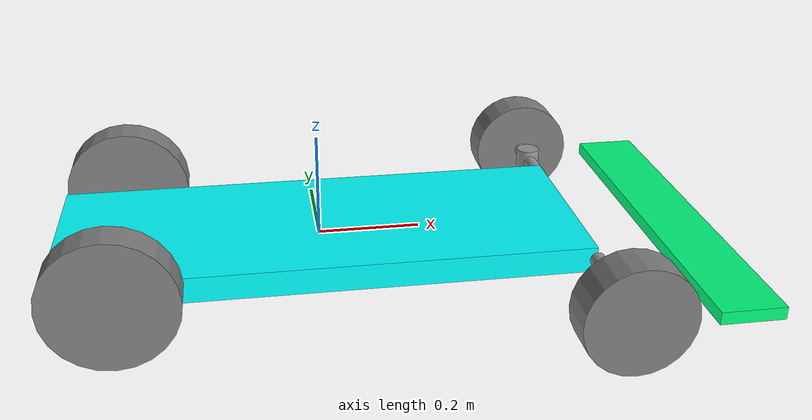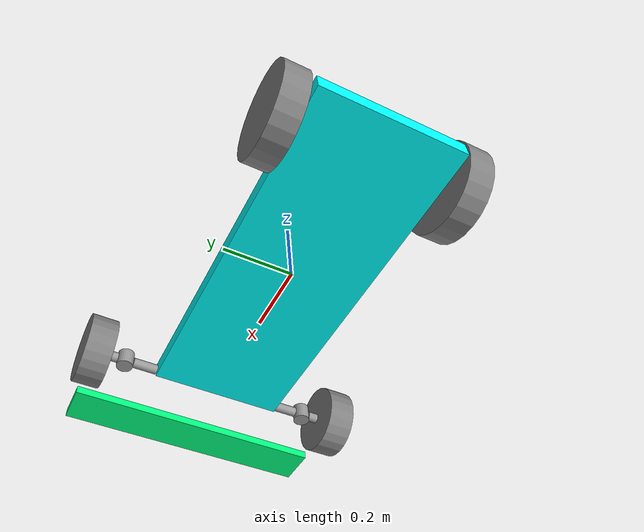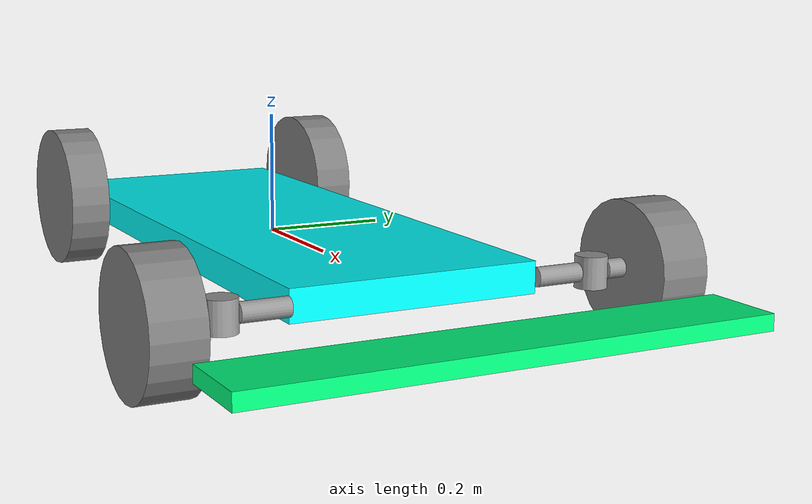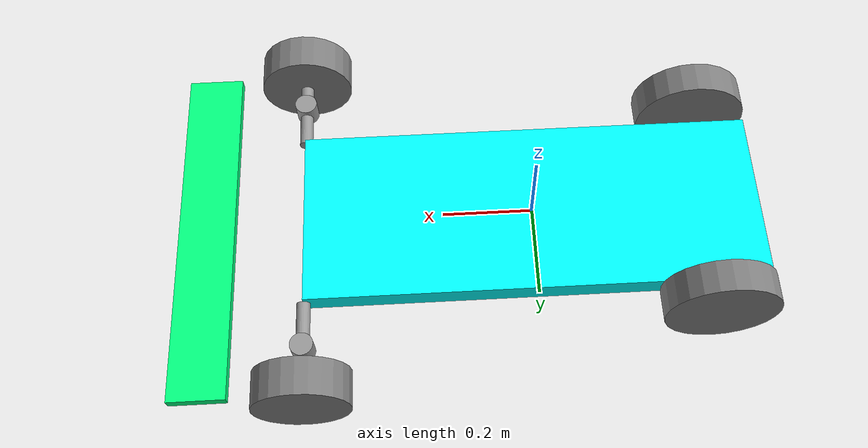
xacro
<?xml version="1.0"?>
<robot xmlns:xacro="http://ros.org/wiki/xacro">

 <!-- Heavily based on https://navigation.ros.org/setup_guides/urdf/setup_urdf.html -->

   <!-- Define robot constants -->
  <xacro:property name="base_width" value="0.4"/>
  <xacro:property name="base_length" value="1.02"/>
  <xacro:property name="base_height" value="0.05"/>

  <!-- backwheel params -->
  <xacro:property name="backwheel_radius" value="0.125"/>
  <xacro:property name="backwheel_width" value="0.069"/>
  <xacro:property name="backwheel_ygap" value="0.01"/>
  <xacro:property name="backwheel_zoff" value="-0.02"/>
  <xacro:property name="backwheel_xoff" value="${-(base_length)/2 + (backwheel_radius)}"/>

  <!-- frontwheel params -->
  <xacro:property name="frontwheel_radius" value="0.105"/>
  <xacro:property name="frontwheel_width" value="0.080"/>
  <xacro:property name="frontwheel_ygapp" value="0.1"/>
  <xacro:property name="frontwheel_zoff" value="0.080"/>
  <xacro:property name="frontwheel_xoff" value="${ (base_length)/2 }"/>

  <!-- Frontwheel steering geometry params -->
  <xacro:property name="steering_body_extension_length" value="0.075"/>
  <xacro:property name="steering_body_extension_radius" value="0.015"/>
  <xacro:property name="steering_body_extension_zoff" value="0"/>
  <xacro:property name="steering_swiwel_length" value="0.05"/>
  <xacro:property name="steering_swiwel_radius" value="0.025"/>
  <xacro:property name="steering_swiwel_extension_length" value="0.03"/>
  <xacro:property name="steering_swiwel_extension_radius" value="0.015"/>

  <xacro:property name="steering_turn_max_limit" value="${pi/5}"/>
  <xacro:property name="steering_turn_min_limit" value="${-pi/5}"/>

  <!-- Gokart front wing parameters - As of now simplified to a slab -->
  <xacro:property name="gokart_frontwing_width" value="0.8"/>
  <xacro:property name="gokart_frontwing_length" value="0.125"/>
  <xacro:property name="gokart_frontwing_height" value="0.025"/>
  <xacro:property name="gokart_frontwing_body_xoff" value="0.16"/>

  <!-- Inertial parameters for chassi dynamics, very simplified -->
  <!-- TODO make the dynamics more accurate and real life accurate, see this as placeholders-->
  <xacro:property name="backwheel_weight" value="4.0"/>
  <xacro:property name="frontwheel_weight" value="1.5"/>
  <xacro:property name="chassi_body_weight" value="50.0"/>
  <xacro:property name="frontwing_weight" value="50.0"/>
  <xacro:property name="front_steering_link_weight" value="0.25"/>

  <!-- Inertial macros -->
  <xacro:include filename="$(find autonomous_platform_robot_description_pkg)/src/description/inertia_macros.xacro"/>

  <!-- Robot Base -->
  <link name="base_link">
    <visual>
      <geometry>
        <box size="${base_length} ${base_width} ${base_height}"/>
      </geometry>
      <material name="Cyan">
        <color rgba="0 1.0 1.0 1.0"/>
      </material>
    </visual>

    <collision>
      <geometry>
        <box size="${base_length} ${base_width} ${base_height}"/>
      </geometry>
    </collision>

    <xacro:inertial_box mass="${chassi_body_weight}" x="${base_length}" y="${base_width}" z="${base_height}">
      <origin xyz="0.0 0.0 0.0" rpy="0.0 0.0 0.0"/>
    </xacro:inertial_box>

    <gazebo reference="base_link">
      <material name="Cyan">
        <color rgba="0 1.0 1.0 1.0"/>
      </material>
    </gazebo>
  </link>

    <!-- Robot Footprint -->
  <link name="base_footprint"/>

  <joint name="base_joint" type="fixed">
    <parent link="base_link"/>
    <child link="base_footprint"/>
    <origin xyz="0.0 0.0 ${-(backwheel_radius+backwheel_zoff)}" rpy="0 0 0"/>
  </joint>

    <!-- macro backwheels -->
  <xacro:macro name="wheel" params="prefix x_reflect y_reflect">
    <link name="backwheel_${prefix}_link">
      <visual>
        <origin xyz="0 0 0" rpy="${pi/2} 0 0"/>
        <geometry>
            <cylinder radius="${backwheel_radius}" length="${backwheel_width}"/>
        </geometry>
        <material name="Gray">
          <color rgba="0.5 0.5 0.5 1.0"/>
        </material>
      </visual>

      <collision>
      <origin xyz="0 0 0" rpy="${pi/2} 0 0"/>
        <geometry>
            <cylinder radius="${backwheel_radius}" length="${backwheel_width}"/>
        </geometry>
      </collision>

      <xacro:inertial_cylinder mass="${backwheel_weight}" length="${backwheel_width}" radius="${backwheel_radius}" >
        <origin xyz="0 0 0" rpy="${pi/2} 0 0"/>
      </xacro:inertial_cylinder>
    </link>

    <joint name="${prefix}_joint" type="continuous">
      <parent link="base_link"/>
      <child link="backwheel_${prefix}_link"/>
      <origin xyz="${x_reflect*backwheel_xoff} ${y_reflect*(base_width/2)+y_reflect*backwheel_ygap + y_reflect*backwheel_width/2} ${-backwheel_zoff}" rpy="0 0 0"/>
      <axis xyz="0 1 0"/>
      <limit effort="0.1" velocity="20"/>
    </joint>

    <gazebo reference="backwheel_${prefix}_link">
      <material> Gazebo/DarkGrey </material>
    </gazebo>

  </xacro:macro>

  <!-- Create back wheels -->
  <xacro:wheel prefix="drive_wheel_left" x_reflect="1" y_reflect="1" />
  <xacro:wheel prefix="drive_wheel_right" x_reflect="1" y_reflect="-1" />

  <!-- macro front steering geometry and front wheels i.e define everything once and mirror left and right geometry-->
  <xacro:macro name="front_steering" params="prefix x_reflect y_reflect">
  <!-- links -->

  <!-- Link describing how steering geomtry is mounted to the gokart chassis-->
    <link name="body_extension_${prefix}_link">
      <visual>
        <origin xyz="0 0 0" rpy="${pi/2} 0 0"/>
        <geometry>
            <cylinder radius="${steering_body_extension_radius}" length="${steering_body_extension_length}"/>
        </geometry>
        <material name="Gray">
          <color rgba="0.6 0.6 0.6 1.0"/>
        </material>
      </visual>

      <collision>
        <origin xyz="0 0 0" rpy="${pi/2} 0 0"/>
        <geometry>
            <cylinder radius="${steering_body_extension_radius}" length="${steering_body_extension_length}"/>
        </geometry>
      </collision>

      <xacro:inertial_cylinder mass="${front_steering_link_weight}" length="${steering_body_extension_length}" radius="${steering_body_extension_radius}" >
        <origin xyz="0 0 0" rpy="${pi/2} 0 0"/>
      </xacro:inertial_cylinder>

      <gazebo reference="body_extension_${prefix}_link">
        <material> Gazebo/Yellow </material>
      </gazebo>

    </link>

    <!-- Link describing the steering swiwel geometry-->
    <link name="steering_swiwel_${prefix}_link">
      <visual>
        <origin xyz="0 0 0" rpy="0 0 0"/>
        <geometry>
            <cylinder radius="${steering_swiwel_radius}" length="${steering_swiwel_length}"/>
        </geometry>
        <material name="Gray">
          <color rgba="0.6 0.6 0.6 1.0"/>
        </material>
      </visual>

      <collision>
        <origin xyz="0 0 0" rpy="0 0 0"/>
        <geometry>
            <cylinder radius="${steering_swiwel_radius}" length="${steering_swiwel_length}"/>
        </geometry>
      </collision>

      <xacro:inertial_cylinder mass="${front_steering_link_weight}" length="${steering_swiwel_radius}" radius="${steering_swiwel_length}" >
        <origin xyz="0 0 0" rpy="0 0 0"/>
      </xacro:inertial_cylinder>

      <gazebo reference="steering_swiwel_${prefix}_link">
        <material> Gazebo/Orange </material>
      </gazebo>
    </link>

    <!-- link describing how the wheel is mounted a fixed distance from the swiwel geometry i.e rotating point-->
    <link name="swiwel_extension_${prefix}_link">
      <visual>
        <origin xyz="0 0 0" rpy="${pi/2} 0 0"/>
        <geometry>
            <cylinder radius="${steering_swiwel_extension_radius}" length="${steering_swiwel_extension_length}"/>
        </geometry>
        <material name="Gray">
          <color rgba="0.6 0.6 0.6 1.0"/>
        </material>
      </visual>

      <collision>
      <origin xyz="0 0 0" rpy="${pi/2} 0 0"/>
        <geometry>
            <cylinder radius="${steering_swiwel_extension_radius}" length="${steering_swiwel_extension_length}"/>
        </geometry>
      </collision>

      <xacro:inertial_cylinder mass="${front_steering_link_weight}" length="${steering_swiwel_extension_length}" radius="${steering_swiwel_extension_radius}" >
        <origin xyz="0 0 0" rpy="${pi/2} 0 0"/>
      </xacro:inertial_cylinder>

      <gazebo reference="swiwel_extension_${prefix}_link">
        <material> Gazebo/ZincYellow </material>
      </gazebo>
    </link>

    <!-- link describing the front wheel -->
    <link name="frontwheel_${prefix}_link">
      <visual>
        <origin xyz="0 0 0" rpy="${pi/2} 0 0"/>
        <geometry>
            <cylinder radius="${frontwheel_radius}" length="${frontwheel_width}"/>
        </geometry>
        <material name="Gray">
          <color rgba="0.5 0.5 0.5 1.0"/>
        </material>
      </visual>

      <collision>
        <origin xyz="0 0 0" rpy="${pi/2} 0 0"/>
        <geometry>
            <cylinder radius="${frontwheel_radius}" length="${frontwheel_width}"/>
        </geometry>
      </collision>

      <xacro:inertial_cylinder mass="${frontwheel_weight}" length="${frontwheel_width}" radius="${frontwheel_radius}" >
        <origin xyz="0 0 0" rpy="${pi/2} 0 0"/>
      </xacro:inertial_cylinder>

      <gazebo reference="frontwheel_${prefix}_link">
        <material> Gazebo/Grey </material>
      </gazebo>
    </link>

   <!-- joints -->

   <!-- joint describing how the steering gemetry is mounted fixed onto the gokart frame -->
    <joint name="$body_extension_${prefix}_joint" type="fixed">
      <parent link="base_link"/>
      <child link="body_extension_${prefix}_link"/>
      <origin xyz="${x_reflect*frontwheel_xoff} ${y_reflect*(base_width/2)+y_reflect*(steering_body_extension_length)/2} ${steering_body_extension_zoff}" rpy="0 0 0"/>
      <axis xyz="0 1 0"/>
    </joint>

    <!-- joint describing how the steering geometry can swiwel i.e turn the wheel -->
    <joint name="steering_swiwel_${prefix}_joint" type="revolute">
      <parent link="body_extension_${prefix}_link"/>
      <child link="steering_swiwel_${prefix}_link"/>
      <axis xyz="0 0 1" />
      <limit effort="1" lower="${x_reflect*steering_turn_min_limit}" upper="${x_reflect*steering_turn_max_limit}" velocity="1" />
      <origin xyz="0 ${y_reflect*( steering_body_extension_length )/2 + y_reflect*steering_swiwel_radius} 0" rpy="0 0 0"/>
    </joint>

    <!-- Joint descring how the swiwel extension link is mounted to the swiwel link, fixed -->
<joint name="swiwel_extension_${prefix}_joint" type="fixed">
      <parent link="steering_swiwel_${prefix}_link" />
      <child link="swiwel_extension_${prefix}_link"/>
      <origin xyz="0 ${y_reflect*(steering_swiwel_extension_length)/2 + y_reflect*steering_swiwel_radius} 0" rpy="0 0 0"/>
      <axis xyz="0 1 0"/>
    </joint>

    <!-- joint describing how the front wheel is connected to the swiwel extension link and -->
<joint name="frontwheel_${prefix}_joint" type="continuous">
      <parent link="swiwel_extension_${prefix}_link" />
      <child link="frontwheel_${prefix}_link"/>
      <origin xyz="0 ${y_reflect*(steering_swiwel_extension_length)/2 + y_reflect*frontwheel_width/2} 0" rpy="0 0 0"/>
      <axis xyz="0 1 0"/>
      <limit effort="0.1" velocity="5"/>
    </joint>

  </xacro:macro>

  <!-- Create front steering geometry and wheels -->
  <xacro:front_steering prefix="right" x_reflect="1" y_reflect="1" />
  <xacro:front_steering prefix="left" x_reflect="1" y_reflect="-1" />

 <!-- Create frontwing link on which one would like to mount future sensors -->
 <link name="gokart_frontwing_link">
      <visual>
        <origin xyz="${gokart_frontwing_length/2} 0 0" rpy="0 0 0"/>
        <geometry>
             <box size="${gokart_frontwing_length} ${gokart_frontwing_width} ${gokart_frontwing_height}"/>
        </geometry>
        <material name="White1">
          <color rgba="0 1.0 0.5 1.0"/>
        </material>
      </visual>

      <collision>
        <origin xyz="${gokart_frontwing_length/2} 0 0" rpy="0 0 0"/>
        <geometry>
             <box size="${gokart_frontwing_length} ${gokart_frontwing_width} ${gokart_frontwing_height}"/>
        </geometry>
      </collision>

      <xacro:inertial_box mass="${frontwing_weight}" x="${gokart_frontwing_length}" y="${gokart_frontwing_width}" z="${gokart_frontwing_height}">
      <origin xyz="0.0 0.0 0.0" rpy="0.0 0.0 0.0"/>
    </xacro:inertial_box>

      <gazebo reference="gokart_frontwing_link">
        <material> Gazebo/Green </material>
      </gazebo>
    </link>

 <!-- Create frontwing joint, mount the frontwing to the gokart body with a fixed joint -->
<joint name="frontwing_joint" type="fixed">
      <parent link="base_link"/>
      <child link="gokart_frontwing_link"/>
      <origin xyz="${base_length/2+gokart_frontwing_body_xoff} 0 ${-gokart_frontwing_height}" rpy="0 0 0"/>
      <axis xyz="1 0 0"/>
    </joint>

</robot>

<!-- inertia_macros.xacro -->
<robot xmlns:xacro="http://ros.org/wiki/xacro">

 <!-- Taken from https://github.com/joshnewans/articubot_one/blob/d5aa5e9bc9039073c0d8fd7fe426e170be79c087/description/inertial_macros.xacro -->

<!-- Specify some standard inertial calculations https://en.wikipedia.org/wiki/List_of_moments_of_inertia -->
    <!-- These make use of xacro's mathematical functionality -->

    <xacro:macro name="inertial_sphere" params="mass radius *origin">
        <inertial>
            <xacro:insert_block name="origin"/>
            <mass value="${mass}" />
            <inertia ixx="${(2/5) * mass * (radius*radius)}" ixy="0.0" ixz="0.0"
                    iyy="${(2/5) * mass * (radius*radius)}" iyz="0.0"
                    izz="${(2/5) * mass * (radius*radius)}" />
        </inertial>
    </xacro:macro>

    <xacro:macro name="inertial_box" params="mass x y z *origin">
        <inertial>
            <xacro:insert_block name="origin"/>
            <mass value="${mass}" />
            <inertia ixx="${(1/12) * mass * (y*y+z*z)}" ixy="0.0" ixz="0.0"
                    iyy="${(1/12) * mass * (x*x+z*z)}" iyz="0.0"
                    izz="${(1/12) * mass * (x*x+y*y)}" />
        </inertial>
    </xacro:macro>

    <xacro:macro name="inertial_cylinder" params="mass length radius *origin">
        <inertial>
            <xacro:insert_block name="origin"/>
            <mass value="${mass}" />
            <inertia ixx="${(1/12) * mass * (3*radius*radius + length*length)}" ixy="0.0" ixz="0.0"
                    iyy="${(1/12) * mass * (3*radius*radius + length*length)}" iyz="0.0"
                    izz="${(1/2) * mass * (radius*radius)}" />
        </inertial>
    </xacro:macro>

</robot>
